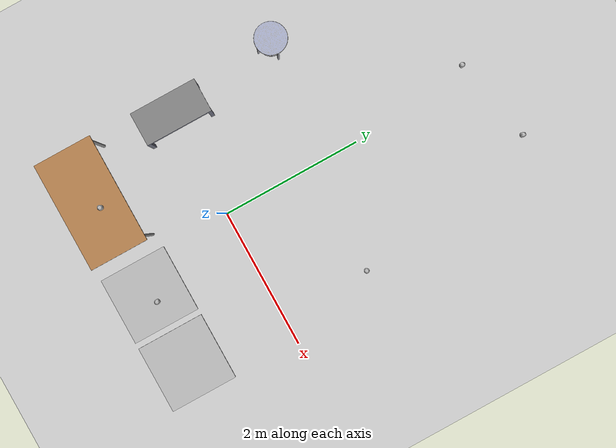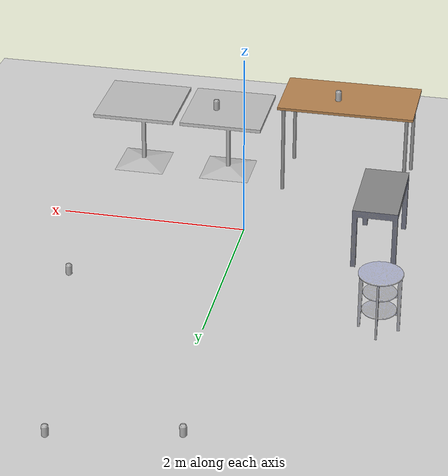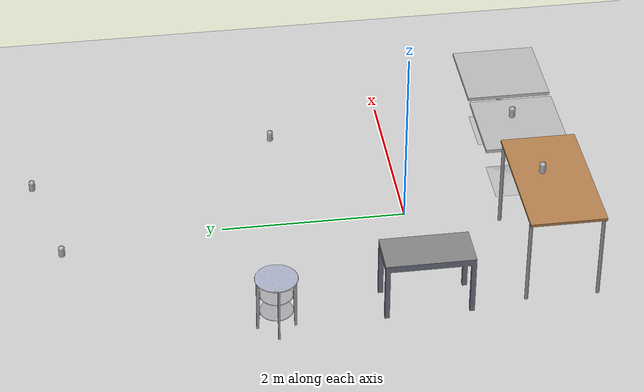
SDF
<sdf version="1.6">
 <world name="default">
  <light name="sun" type="directional">
   <pose>0 0 10 0 -0 0</pose>
   <diffuse>0.8 0.8 0.8 1</diffuse>
   <specular>0.2 0.2 0.2 1</specular>
   <attenuation>
    <range>1000</range>
    <constant>0.9</constant>
    <linear>0.01</linear>
    <quadratic>0.001</quadratic>
   </attenuation>
   <direction>-0.5 0.1 -0.9</direction>
  </light>
  <model name="ground_plane">
   <static>1</static>
   <link name="link">
    <collision name="collision">
     <geometry><plane><normal>0 0 1</normal><size>100 100</size></plane></geometry>
     <surface>
      <contact><collide_bitmask>65535</collide_bitmask></contact>
      <friction><ode><mu>100</mu><mu2>50</mu2></ode></friction>
     </surface>
    </collision>
    <visual name="visual">
     <cast_shadows>0</cast_shadows>
     <geometry><plane><normal>0 0 1</normal><size>100 100</size></plane></geometry>
     <material>
      <script><uri>file://media/materials/scripts/gazebo.material</uri><name>Gazebo/Grey</name></script>
     </material>
    </visual>
   </link>
  </model>
  <gravity>0 0 -9.8</gravity>
  <magnetic_field>6e-06 2.3e-05 -4.2e-05</magnetic_field>
  <atmosphere type="adiabatic"/>
  <physics name="default_physics" default="0" type="ode">
   <max_step_size>0.001</max_step_size>
   <real_time_factor>1</real_time_factor>
   <real_time_update_rate>1000</real_time_update_rate>
  </physics>
  <scene><ambient>0.4 0.4 0.4 1</ambient><background>0.7 0.7 0.7 1</background><shadows>1</shadows></scene>
  <audio><device>default</device></audio>
  <spherical_coordinates>
   <surface_model>EARTH_WGS84</surface_model>
   <latitude_deg>0</latitude_deg>
   <longitude_deg>0</longitude_deg>
   <elevation>0</elevation>
   <heading_deg>0</heading_deg>
  </spherical_coordinates>
  <model name="table">
   <static>1</static>
   <link name="link">
    <collision name="surface">
     <pose>0 0 1 0 -0 0</pose>
     <geometry><box><size>1.5 0.8 0.03</size></box></geometry>
     <surface><friction><ode><mu>0.6</mu><mu2>0.6</mu2></ode></friction></surface>
    </collision>
    <visual name="visual1">
     <pose>0 0 1 0 -0 0</pose>
     <geometry><box><size>1.5 0.8 0.03</size></box></geometry>
     <material>
      <script><uri>file://media/materials/scripts/gazebo.material</uri><name>Gazebo/Wood</name></script>
     </material>
    </visual>
    <collision name="front_left_leg">
     <pose>0.68 0.38 0.5 0 -0 0</pose>
     <geometry><cylinder><radius>0.02</radius><length>1</length></cylinder></geometry>
    </collision>
    <visual name="front_left_leg">
     <pose>0.68 0.38 0.5 0 -0 0</pose>
     <geometry><cylinder><radius>0.02</radius><length>1</length></cylinder></geometry>
     <material>
      <script><uri>file://media/materials/scripts/gazebo.material</uri><name>Gazebo/Grey</name></script>
     </material>
    </visual>
    <collision name="front_right_leg">
     <pose>0.68 -0.38 0.5 0 -0 0</pose>
     <geometry><cylinder><radius>0.02</radius><length>1</length></cylinder></geometry>
    </collision>
    <visual name="front_right_leg">
     <pose>0.68 -0.38 0.5 0 -0 0</pose>
     <geometry><cylinder><radius>0.02</radius><length>1</length></cylinder></geometry>
     <material>
      <script><uri>file://media/materials/scripts/gazebo.material</uri><name>Gazebo/Grey</name></script>
     </material>
    </visual>
    <collision name="back_right_leg">
     <pose>-0.68 -0.38 0.5 0 -0 0</pose>
     <geometry><cylinder><radius>0.02</radius><length>1</length></cylinder></geometry>
    </collision>
    <visual name="back_right_leg">
     <pose>-0.68 -0.38 0.5 0 -0 0</pose>
     <geometry><cylinder><radius>0.02</radius><length>1</length></cylinder></geometry>
     <material>
      <script><uri>file://media/materials/scripts/gazebo.material</uri><name>Gazebo/Grey</name></script>
     </material>
    </visual>
    <collision name="back_left_leg">
     <pose>-0.68 0.38 0.5 0 -0 0</pose>
     <geometry><cylinder><radius>0.02</radius><length>1</length></cylinder></geometry>
    </collision>
    <visual name="back_left_leg">
     <pose>-0.68 0.38 0.5 0 -0 0</pose>
     <geometry><cylinder><radius>0.02</radius><length>1</length></cylinder></geometry>
     <material>
      <script><uri>file://media/materials/scripts/gazebo.material</uri><name>Gazebo/Grey</name></script>
     </material>
    </visual>
   </link>
   <pose>-0.917018 -1.38603 0 0 -0 0</pose>
  </model>
  <model name="cafe_table">
   <static>1</static>
   <link name="link">
    <collision name="surface">
     <pose>0 0 0.755 0 -0 0</pose>
     <geometry><box><size>0.913 0.913 0.04</size></box></geometry>
    </collision>
    <collision name="column">
     <pose>0 0 0.37 0 -0 0</pose>
     <geometry><box><size>0.042 0.042 0.74</size></box></geometry>
    </collision>
    <collision name="base">
     <pose>0 0 0.02 0 -0 0</pose>
     <geometry><box><size>0.56 0.56 0.04</size></box></geometry>
    </collision>
    <visual name="visual">
     <geometry><mesh><uri>model://cafe_table/meshes/cafe_table.dae</uri></mesh></geometry>
    </visual>
   </link>
   <pose>1.44903 -1.33003 0 0 -0 0</pose>
  </model>
  <model name="cafe_table_0">
   <static>1</static>
   <link name="link">
    <collision name="surface">
     <pose>0 0 0.755 0 -0 0</pose>
     <geometry><box><size>0.913 0.913 0.04</size></box></geometry>
    </collision>
    <collision name="column">
     <pose>0 0 0.37 0 -0 0</pose>
     <geometry><box><size>0.042 0.042 0.74</size></box></geometry>
    </collision>
    <collision name="base">
     <pose>0 0 0.02 0 -0 0</pose>
     <geometry><box><size>0.56 0.56 0.04</size></box></geometry>
    </collision>
    <visual name="visual">
     <geometry><mesh><uri>model://cafe_table/meshes/cafe_table.dae</uri></mesh></geometry>
    </visual>
   </link>
   <pose>0.455009 -1.33003 0 0 -0 0</pose>
  </model>
  <model name="side_table_1">
   <link name="link_1">
    <pose>0.007786 -0.167928 0 0 -0 0</pose>
    <visual name="visual">
     <geometry><mesh><uri>model://side_table_1/meshes/middle.dae</uri><scale>1 1 1</scale></mesh></geometry>
     <material>
      <script>
       <uri>model://side_table_1/materials/scripts</uri>
       <uri>model://side_table_1/materials/textures</uri>
       <name>side_table_1</name>
      </script>
     </material>
    </visual>
    <collision name="collision">
     <geometry><mesh><uri>model://side_table_1/meshes/middle.dae</uri><scale>1 1 1</scale></mesh></geometry>
    </collision>
   </link>
   <link name="link_2">
    <pose>0.007887 -0.167821 0 0 -0 0</pose>
    <visual name="visual">
     <geometry><mesh><uri>model://side_table_1/meshes/leg.dae</uri><scale>1 1 1</scale></mesh></geometry>
     <material>
      <script>
       <uri>model://side_table_1/materials/scripts</uri>
       <uri>model://side_table_1/materials/textures</uri>
       <name>side_table_1</name>
      </script>
     </material>
    </visual>
    <collision name="collision">
     <geometry><mesh><uri>model://side_table_1/meshes/leg.dae</uri><scale>1 1 1</scale></mesh></geometry>
    </collision>
   </link>
   <link name="link_2_clone">
    <pose>0.208023 0.051865 0 0 -0 1.57</pose>
    <visual name="visual">
     <geometry><mesh><uri>model://side_table_1/meshes/leg.dae</uri><scale>1 1 1</scale></mesh></geometry>
     <material>
      <script>
       <uri>model://side_table_1/materials/scripts</uri>
       <uri>model://side_table_1/materials/textures</uri>
       <name>side_table_1</name>
      </script>
     </material>
    </visual>
    <collision name="collision">
     <geometry><mesh><uri>model://side_table_1/meshes/leg.dae</uri><scale>1 1 1</scale></mesh></geometry>
    </collision>
   </link>
   <link name="link_2_clone_0">
    <pose>-0.212235 0.031759 0 0 0 -1.57</pose>
    <visual name="visual">
     <geometry><mesh><uri>model://side_table_1/meshes/leg.dae</uri><scale>1 1 1</scale></mesh></geometry>
     <material>
      <script>
       <uri>model://side_table_1/materials/scripts</uri>
       <uri>model://side_table_1/materials/textures</uri>
       <name>side_table_1</name>
      </script>
     </material>
    </visual>
    <collision name="collision">
     <geometry><mesh><uri>model://side_table_1/meshes/leg.dae</uri><scale>1 1 1</scale></mesh></geometry>
    </collision>
   </link>
   <link name="link_2_clone_clone">
    <pose>-0.011459 0.252125 0 0 -0 3.14</pose>
    <visual name="visual">
     <geometry><mesh><uri>model://side_table_1/meshes/leg.dae</uri><scale>1 1 1</scale></mesh></geometry>
     <material>
      <script>
       <uri>model://side_table_1/materials/scripts</uri>
       <uri>model://side_table_1/materials/textures</uri>
       <name>side_table_1</name>
      </script>
     </material>
    </visual>
    <collision name="collision">
     <geometry><mesh><uri>model://side_table_1/meshes/leg.dae</uri><scale>1 1 1</scale></mesh></geometry>
    </collision>
   </link>
   <static>1</static>
   <pose>-1.68703 1.58203 0 0 -0 0</pose>
  </model>
  <model name="table_dining">
   <link name="link_24">
    <visual name="visual">
     <geometry><mesh><uri>model://table_dining/meshes/table2.dae</uri><scale>1 1 1</scale></mesh></geometry>
     <material>
      <script>
       <uri>model://table_dining/materials/scripts</uri>
       <uri>model://table_dining/materials/textures</uri>
       <name>dining_table</name>
      </script>
     </material>
    </visual>
    <collision name="collision">
     <geometry><mesh><uri>model://table_dining/meshes/table2.dae</uri><scale>1 1 1</scale></mesh></geometry>
    </collision>
   </link>
   <static>1</static>
   <pose>-1.46303 0.028001 0 0 -0 1.57</pose>
  </model>
  <model name="coca_cola">
   <link name="link">
    <pose>0 0 0.115 0 -0 0</pose>
    <inertial>
     <mass>0.39</mass>
     <inertia><ixx>0.00058</ixx><ixy>0</ixy><ixz>0</ixz><iyy>0.00058</iyy><iyz>0</iyz><izz>0.00019</izz></inertia>
    </inertial>
    <collision name="collision">
     <geometry><cylinder><radius>0.0301625</radius><length>0.12065</length></cylinder></geometry>
    </collision>
    <visual name="bodyMesh">
     <geometry><mesh><uri>model://coca_cola/meshes/coke.dae</uri><scale>1 1 1</scale></mesh></geometry>
    </visual>
   </link>
   <pose>1 4 -0.054675 -0 -0 -0</pose>
  </model>
  <model name="coca_cola_clone">
   <link name="link">
    <pose>0 0 0.115 0 -0 0</pose>
    <inertial>
     <mass>0.39</mass>
     <inertia><ixx>0.00058</ixx><ixy>0</ixy><ixz>0</ixz><iyy>0.00058</iyy><iyz>0</iyz><izz>0.00019</izz></inertia>
    </inertial>
    <collision name="collision">
     <geometry><cylinder><radius>0.0301625</radius><length>0.12065</length></cylinder></geometry>
    </collision>
    <visual name="bodyMesh">
     <geometry><mesh><uri>model://coca_cola/meshes/coke.dae</uri><scale>1 1 1</scale></mesh></geometry>
    </visual>
   </link>
   <pose>1.58423 1.2776 -0.054675 -0 -0 -0</pose>
  </model>
  <model name="coca_cola_clone_0">
   <link name="link">
    <pose>0 0 0.115 0 -0 0</pose>
    <inertial>
     <mass>0.39</mass>
     <inertia><ixx>0.00058</ixx><ixy>0</ixy><ixz>0</ixz><iyy>0.00058</iyy><iyz>0</iyz><izz>0.00019</izz></inertia>
    </inertial>
    <collision name="collision">
     <geometry><cylinder><radius>0.0301625</radius><length>0.12065</length></cylinder></geometry>
    </collision>
    <visual name="bodyMesh">
     <geometry><mesh><uri>model://coca_cola/meshes/coke.dae</uri><scale>1 1 1</scale></mesh></geometry>
    </visual>
   </link>
   <pose>-0.215408 3.74079 -0.054675 -0 -0 -0</pose>
  </model>
  <model name="coca_cola_clone_1">
   <link name="link">
    <pose>0 0 0.115 0 -0 0</pose>
    <inertial>
     <mass>0.39</mass>
     <inertia><ixx>0.00058</ixx><ixy>0</ixy><ixz>0</ixz><iyy>0.00058</iyy><iyz>0</iyz><izz>0.00019</izz></inertia>
    </inertial>
    <collision name="collision">
     <geometry><cylinder><radius>0.0301625</radius><length>0.12065</length></cylinder></geometry>
    </collision>
    <visual name="bodyMesh">
     <geometry><mesh><uri>model://coca_cola/meshes/coke.dae</uri><scale>1 1 1</scale></mesh></geometry>
    </visual>
   </link>
   <pose>-0.798532 -1.29618 0.960326 8e-06 2.3e-05 -0.00017</pose>
  </model>
  <model name="coca_cola_clone_2">
   <link name="link">
    <pose>0 0 0.115 0 -0 0</pose>
    <inertial>
     <mass>0.39</mass>
     <inertia><ixx>0.00058</ixx><ixy>0</ixy><ixz>0</ixz><iyy>0.00058</iyy><iyz>0</iyz><izz>0.00019</izz></inertia>
    </inertial>
    <collision name="collision">
     <geometry><cylinder><radius>0.0301625</radius><length>0.12065</length></cylinder></geometry>
    </collision>
    <visual name="bodyMesh">
     <geometry><mesh><uri>model://coca_cola/meshes/coke.dae</uri><scale>1 1 1</scale></mesh></geometry>
    </visual>
   </link>
   <pose>0.578843 -1.27608 0.720325 -1.3e-05 -5e-06 -0.000366</pose>
  </model>
 </world>
</sdf>
